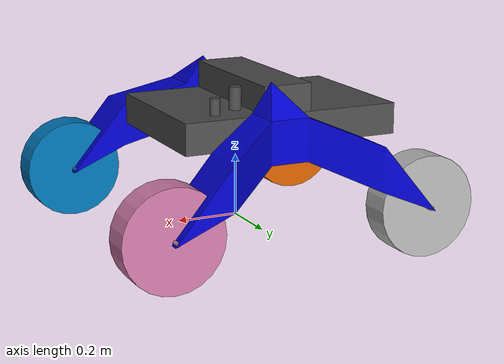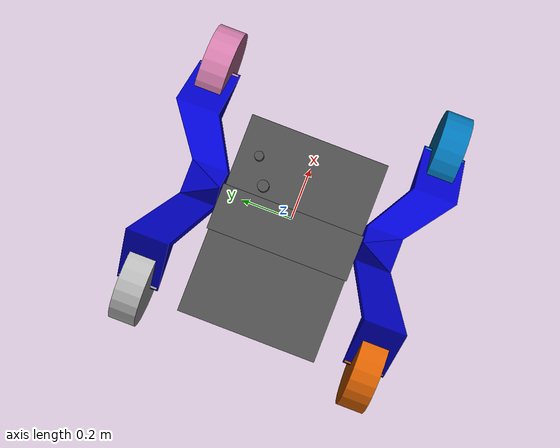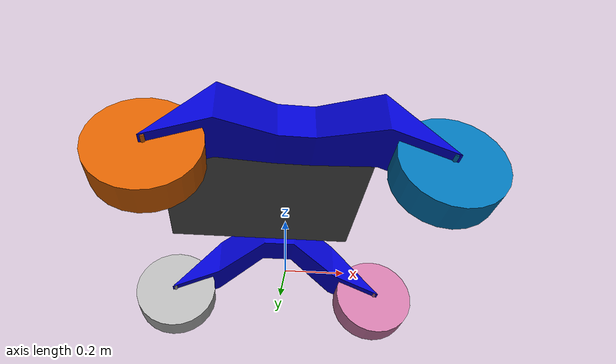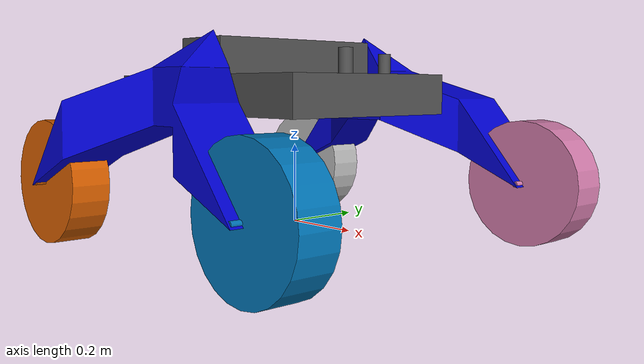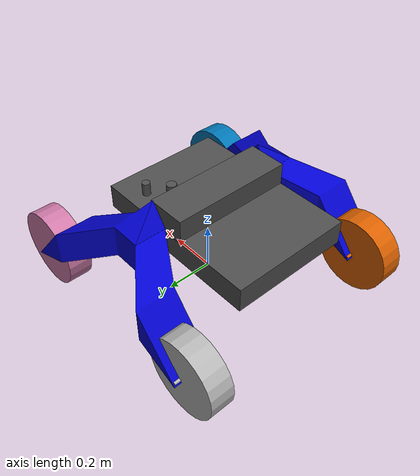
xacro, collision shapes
<?xml version="1.0"?>
<robot xmlns:xacro="http://www.ros.org/wiki/xacro"
  name="aleph2">

  <xacro:arg name="rockers_fixed" default="true" />

  <xacro:include filename="include/materials.xacro" />
  <xacro:include filename="include/base.xacro" />
  <xacro:include filename="include/drivetrain.xacro" />
  <xacro:include filename="$(find aleph2_description)/ros2_control/aleph2.ros2_control.xacro" />

</robot>

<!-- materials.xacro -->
<robot xmlns:xacro="http://www.ros.org/wiki/xacro">

  <material name="base">
    <color rgba="0.3 0.3 0.3 1"/>
  </material>

  <material name="rocker">
    <color rgba="0 0 0.8 1"/>
  </material>

  <material name="wheel">
    <texture filename="package://aleph2_description/textures/wheel.jpg" />
  </material>

  <material name="manip">
    <color rgba="0.4 0.4 0.4 1"/>
  </material>

  <material name="motor">
    <color rgba="0 0 0.5 1"/>
  </material>

  <material name="encoder">
    <color rgba="0 0.5 0 1"/>
  </material>

  <material name="mast">
    <color rgba="0.8 0.8 0.8 1" />
  </material>

</robot>

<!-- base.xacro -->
<robot xmlns:xacro="http://www.ros.org/wiki/xacro">

  <!-- LINKS -->

  <link name="base_footprint"/>

  <link name="base_link">
    <visual>
      <geometry>
        <mesh filename="package://aleph2_description/models/base.STL" />
      </geometry>
      <origin xyz="0 0 0" rpy="${pi/2} 0 ${pi/2}"/>
      <material name="base" />
    </visual>
    <visual>
      <geometry>
        <cylinder radius="0.02" length="0.12" />
      </geometry>
      <origin xyz="0.06 0.125 0.063" />
      <material name="motor">
        <color rgba="0 0 0.5 1"/>
      </material>
    </visual>
    <visual>
      <geometry>
        <cylinder radius="0.016" length="0.1" />
      </geometry>
      <origin xyz="0.151 0.175 0.053" />
      <material name="encoder">
        <color rgba="0 0.5 0 1"/>
      </material>
    </visual>
    <collision>
      <geometry>
        <box size="0.72 0.5 0.1"/>
      </geometry>
      <origin xyz="-0.08 0 0"/>
    </collision>
    <collision>
      <geometry>
        <box size="0.16 0.5 0.1"/>
      </geometry>
      <origin xyz="-0.06 0 0.09"/>
    </collision>
    <collision>
      <geometry>
        <cylinder radius="0.02" length="0.12" />
      </geometry>
      <origin xyz="0.06 0.125 0.063" />
    </collision>
    <collision>
      <geometry>
        <cylinder radius="0.016" length="0.1" />
      </geometry>
      <origin xyz="0.151 0.175 0.053" />
    </collision>
    <inertial>
      <origin xyz="-0.06700 0.00064 0.00551"/>
      <mass value="9.0" />
      <inertia ixx="0.23691" ixy="-0.00014" ixz="-0.00314"
               iyy="0.23328" iyz="-0.00054" izz="0.40961" />
    </inertial>
  </link>

  <xacro:macro name="rocker" params="name">
    <link name="rocker_${name}_link">
      <visual>
        <geometry>
          <mesh filename="package://aleph2_description/models/rocker.STL"/>
        </geometry>
        <material name="rocker" />
      </visual>
      <collision>
        <geometry>
          <mesh filename="package://aleph2_description/models/rocker_collision.STL" />
        </geometry>
      </collision>
      <inertial>
        <origin xyz="0.00000 -0.01737 0.03763"/>
        <mass value="1.5" />
        <inertia ixx="0.01934" ixy="-0.00942" ixz="-0.00271"
                 iyy="0.03716" iyz="0.00516"  izz="0.04409" />
      </inertial>
    </link>
  </xacro:macro>

  <xacro:rocker name="R" />
  <xacro:rocker name="L" />

  <!-- JOINTS -->

  <joint name="base_joint" type="fixed">
    <origin xyz="0 0 0.33" rpy="0 0 0"/>
    <parent link="base_footprint"/>
    <child link="base_link"/>
  </joint>

  <xacro:if value="$(arg rockers_fixed)">
    <xacro:property name="rockers_joint_type" value="fixed"/>
  </xacro:if>
  <xacro:unless value="$(arg rockers_fixed)">
    <xacro:property name="rockers_joint_type" value="revolute"/>
  </xacro:unless>

  <joint name="rocker_R_joint" type="${rockers_joint_type}">
    <parent link="base_link"/>
    <child link="rocker_R_link"/>
    <origin xyz="0 -0.375 0" rpy="${pi/2} 0 ${pi}"/>
    <axis xyz="0 0 1"/>
    <limit effort="100.0" lower="-0.3" upper="0.3" velocity="100.0"/>
    <dynamics friction="1.0" damping="0.5"/>
  </joint>

  <joint name="rocker_L_joint" type="${rockers_joint_type}">
    <parent link="base_link"/>
    <child link="rocker_L_link"/>
    <origin xyz="0 0.375 0" rpy="${pi/2} 0 0"/>
    <axis xyz="0 0 1"/>
    <limit effort="100.0" lower="-0.3" upper="0.3" velocity="100.0"/>
    <dynamics friction="1.0" damping="0.5"/>
  </joint>

</robot>

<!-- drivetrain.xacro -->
<robot xmlns:xacro="http://www.ros.org/wiki/xacro">

  <!-- LINKS -->

  <xacro:macro name="wheel" params="name">
    <link name="wheel_${name}_link">
      <visual>
        <geometry>
          <mesh filename="package://aleph2_description/models/wheel.STL"/>
        </geometry>
        <material name="wheel" />
      </visual>
      <visual name="piasta">
        <geometry>
          <cylinder radius="0.05" length="0.12"/>
        </geometry>
        <origin xyz="0 0 0" rpy="${pi/2} 0 0"/>
        <material name="piasta">
          <color rgba="0.5 0.5 0.5 1" />
        </material>
      </visual>
      <visual name="walek">
        <geometry>
          <cylinder radius="0.0055" length="0.15"/>
        </geometry>
        <origin xyz="0 0 0" rpy="${pi/2} 0 0"/>
        <material name="walek">
          <color rgba="0.7 0.7 0.7 1" />
        </material>
      </visual>
      <collision>
        <geometry>
          <cylinder radius="0.16" length="0.1" />
        </geometry>
        <origin xyz="0 0 0" rpy="${pi/2} 0 0"/>
      </collision>
      <collision>
        <geometry>
          <cylinder radius="0.007" length="0.15"/>
        </geometry>
        <origin xyz="0 0 0" rpy="${pi/2} 0 0"/>
      </collision>
      <inertial>
        <origin xyz="0.00000 0.00000 0.00000"/>
        <mass value="6.0" />
        <inertia ixx="0.03845" ixy="0.00000" ixz="0.00000"
                 iyy="0.06495" iyz="0.00000" izz="0.03845" />
      </inertial>
    </link>
  </xacro:macro>

  <xacro:wheel name="FR" />
  <xacro:wheel name="RR" />
  <xacro:wheel name="FL" />
  <xacro:wheel name="RL" />

  <!-- JOINTS -->

  <joint name="wheel_FR_joint" type="continuous">
    <parent link="rocker_R_link"/>
    <child link="wheel_FR_link"/>
    <origin xyz="-0.418 -0.226 -0.07" rpy="${pi/2} 0 0" />
    <axis xyz="0 1 0"/>
    <dynamics damping="0.5" friction="0.2"/>
    <limit effort="20" velocity="25.0"/>
  </joint>

  <joint name="wheel_RR_joint" type="continuous">
    <parent link="rocker_R_link"/>
    <child link="wheel_RR_link"/>
    <origin xyz="0.418 -0.226 -0.07" rpy="${-pi/2} 0 0" />
    <axis xyz="0 -1 0"/>
    <dynamics damping="0.5" friction="0.2"/>
    <limit effort="20" velocity="25.0"/>
  </joint>

  <joint name="wheel_FL_joint" type="continuous">
    <parent link="rocker_L_link"/>
    <child link="wheel_FL_link"/>
    <origin xyz="0.418 -0.226 -0.07" rpy="${-pi/2} 0 0" />
    <axis xyz="0 1 0"/>
    <dynamics damping="0.5" friction="0.2"/>
    <limit effort="20" velocity="25.0"/>
  </joint>

  <joint name="wheel_RL_joint" type="continuous">
    <parent link="rocker_L_link"/>
    <child link="wheel_RL_link"/>
    <origin xyz="-0.418 -0.226 -0.07" rpy="${pi/2} 0 0" />
    <axis xyz="0 -1 0"/>
    <dynamics damping="0.5" friction="0.2"/>
    <limit effort="20" velocity="25.0"/>
  </joint>

</robot>
